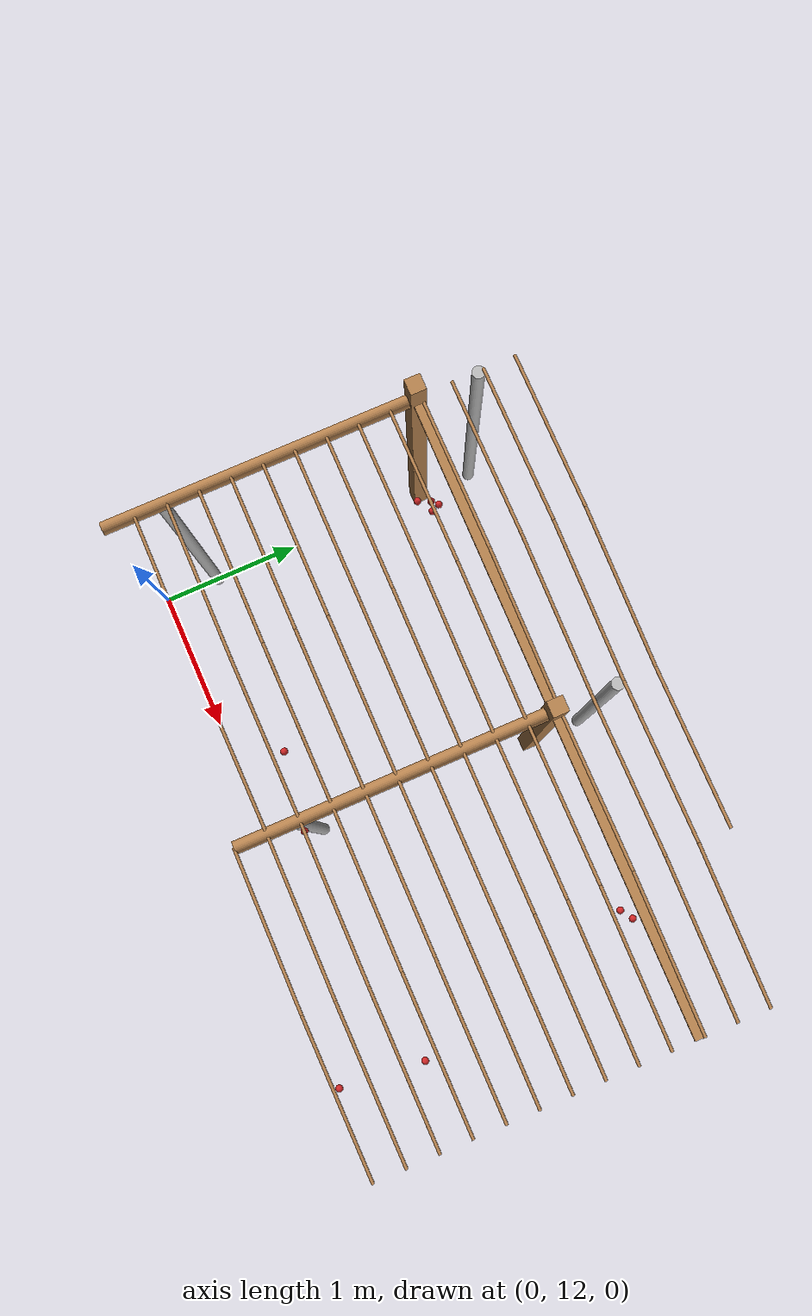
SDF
<sdf version="1.4">
 <model name="pergola">
  <include><name>post_7</name><pose>0.0 14.0 0 0 0 0</pose><uri>model://post</uri></include>
  <include><name>post_18</name><pose>2.0 14.0 0 0 0 0</pose><uri>model://post</uri></include>
  <link name="beam_7">
   <pose>1.0 14.0 1.81 0 0 0</pose>
   <collision name="collision"><geometry><box><size>2.0 0.06 0.02</size></box></geometry></collision>
   <visual name="visual">
    <geometry><box><size>2.0 0.06 0.02</size></box></geometry>
    <material><script><name>Gazebo/Wood</name></script></material>
   </visual>
   <inertial>
    <mass>5</mass>
    <inertia>
     <ixx>0.0016666666666666668</ixx>
     <ixy>0.0</ixy>
     <ixz>0.0</ixz>
     <iyy>1.6681666666666664</iyy>
     <iyz>0.0</iyz>
     <izz>1.6668333333333332</izz>
    </inertia>
   </inertial>
  </link>
  <link name="beam_18">
   <pose>3.0 14.0 1.81 0 0 0</pose>
   <collision name="collision"><geometry><box><size>2.0 0.06 0.02</size></box></geometry></collision>
   <visual name="visual">
    <geometry><box><size>2.0 0.06 0.02</size></box></geometry>
    <material><script><name>Gazebo/Wood</name></script></material>
   </visual>
   <inertial>
    <mass>5</mass>
    <inertia>
     <ixx>0.0016666666666666668</ixx>
     <ixy>0.0</ixy>
     <ixz>0.0</ixz>
     <iyy>1.6681666666666664</iyy>
     <iyz>0.0</iyz>
     <izz>1.6668333333333332</izz>
    </inertia>
   </inertial>
  </link>
  <include><name>tree_6</name><pose>0.0 12.4 0 0 0 0</pose><uri>model://tree_trunk</uri></include>
  <include><name>tree_7</name><pose>0.0 14.4 0 0 0 0</pose><uri>model://tree_trunk</uri></include>
  <include><name>tree_16</name><pose>2.0 12.4 0 0 0 0</pose><uri>model://tree_trunk</uri></include>
  <include><name>tree_17</name><pose>2.0 14.4 0 0 0 0</pose><uri>model://tree_trunk</uri></include>
  <link name="baseBranch_6">
   <pose>0.0 13.0 1.8 1.5707963267948966 0 0</pose>
   <collision name="collision">
    <geometry><cylinder><radius>0.04</radius><length>1.94</length></cylinder></geometry>
   </collision>
   <visual name="visual">
    <geometry><cylinder><radius>0.04</radius><length>1.94</length></cylinder></geometry>
    <material><script><name>Gazebo/WoodFloor</name></script></material>
   </visual>
   <inertial>
    <mass>10</mass>
    <inertia>
     <ixx>3.140333333333333</ixx>
     <ixy>0.0</ixy>
     <ixz>0.0</ixz>
     <iyy>3.140333333333333</iyy>
     <iyz>0.0</iyz>
     <izz>0.008</izz>
    </inertia>
   </inertial>
  </link>
  <link name="baseBranch_16">
   <pose>2.0 13.0 1.8 1.5707963267948966 0 0</pose>
   <collision name="collision">
    <geometry><cylinder><radius>0.04</radius><length>1.94</length></cylinder></geometry>
   </collision>
   <visual name="visual">
    <geometry><cylinder><radius>0.04</radius><length>1.94</length></cylinder></geometry>
    <material><script><name>Gazebo/WoodFloor</name></script></material>
   </visual>
   <inertial>
    <mass>10</mass>
    <inertia>
     <ixx>3.140333333333333</ixx>
     <ixy>0.0</ixy>
     <ixz>0.0</ixz>
     <iyy>3.140333333333333</iyy>
     <iyz>0.0</iyz>
     <izz>0.008</izz>
    </inertia>
   </inertial>
  </link>
  <link name="vine_122">
   <pose>0.5 12.23 1.85 0 1.5208379310729538 0</pose>
   <collision name="collision">
    <geometry><cylinder><radius>0.01</radius><length>1.0012492197250393</length></cylinder></geometry>
   </collision>
   <visual name="visual">
    <geometry><cylinder><radius>0.01</radius><length>1.0012492197250393</length></cylinder></geometry>
    <material><script><name>Gazebo/WoodFloor</name></script></material>
   </visual>
   <inertial>
    <mass>5</mass>
    <inertia>
     <ixx>0.41783333333333345</ixx>
     <ixy>0.0</ixy>
     <ixz>0.0</ixz>
     <iyy>0.41783333333333345</iyy>
     <iyz>0.0</iyz>
     <izz>0.00025</izz>
    </inertia>
   </inertial>
  </link>
  <link name="vine_123">
   <pose>1.5 12.23 1.85 0 -1.5208379310729538 0</pose>
   <collision name="collision">
    <geometry><cylinder><radius>0.01</radius><length>1.0012492197250393</length></cylinder></geometry>
   </collision>
   <visual name="visual">
    <geometry><cylinder><radius>0.01</radius><length>1.0012492197250393</length></cylinder></geometry>
    <material><script><name>Gazebo/WoodFloor</name></script></material>
   </visual>
   <inertial>
    <mass>5</mass>
    <inertia>
     <ixx>0.41783333333333345</ixx>
     <ixy>0.0</ixy>
     <ixz>0.0</ixz>
     <iyy>0.41783333333333345</iyy>
     <iyz>0.0</iyz>
     <izz>0.00025</izz>
    </inertia>
   </inertial>
  </link>
  <link name="vine_124">
   <pose>0.5 12.43 1.85 0 1.5208379310729538 0</pose>
   <collision name="collision">
    <geometry><cylinder><radius>0.01</radius><length>1.0012492197250393</length></cylinder></geometry>
   </collision>
   <visual name="visual">
    <geometry><cylinder><radius>0.01</radius><length>1.0012492197250393</length></cylinder></geometry>
    <material><script><name>Gazebo/WoodFloor</name></script></material>
   </visual>
   <inertial>
    <mass>5</mass>
    <inertia>
     <ixx>0.41783333333333345</ixx>
     <ixy>0.0</ixy>
     <ixz>0.0</ixz>
     <iyy>0.41783333333333345</iyy>
     <iyz>0.0</iyz>
     <izz>0.00025</izz>
    </inertia>
   </inertial>
  </link>
  <link name="vine_125">
   <pose>1.5 12.43 1.85 0 -1.5208379310729538 0</pose>
   <collision name="collision">
    <geometry><cylinder><radius>0.01</radius><length>1.0012492197250393</length></cylinder></geometry>
   </collision>
   <visual name="visual">
    <geometry><cylinder><radius>0.01</radius><length>1.0012492197250393</length></cylinder></geometry>
    <material><script><name>Gazebo/WoodFloor</name></script></material>
   </visual>
   <inertial>
    <mass>5</mass>
    <inertia>
     <ixx>0.41783333333333345</ixx>
     <ixy>0.0</ixy>
     <ixz>0.0</ixz>
     <iyy>0.41783333333333345</iyy>
     <iyz>0.0</iyz>
     <izz>0.00025</izz>
    </inertia>
   </inertial>
  </link>
  <link name="vine_126">
   <pose>0.5 12.63 1.85 0 1.5208379310729538 0</pose>
   <collision name="collision">
    <geometry><cylinder><radius>0.01</radius><length>1.0012492197250393</length></cylinder></geometry>
   </collision>
   <visual name="visual">
    <geometry><cylinder><radius>0.01</radius><length>1.0012492197250393</length></cylinder></geometry>
    <material><script><name>Gazebo/WoodFloor</name></script></material>
   </visual>
   <inertial>
    <mass>5</mass>
    <inertia>
     <ixx>0.41783333333333345</ixx>
     <ixy>0.0</ixy>
     <ixz>0.0</ixz>
     <iyy>0.41783333333333345</iyy>
     <iyz>0.0</iyz>
     <izz>0.00025</izz>
    </inertia>
   </inertial>
  </link>
  <link name="vine_127">
   <pose>1.5 12.63 1.85 0 -1.5208379310729538 0</pose>
   <collision name="collision">
    <geometry><cylinder><radius>0.01</radius><length>1.0012492197250393</length></cylinder></geometry>
   </collision>
   <visual name="visual">
    <geometry><cylinder><radius>0.01</radius><length>1.0012492197250393</length></cylinder></geometry>
    <material><script><name>Gazebo/WoodFloor</name></script></material>
   </visual>
   <inertial>
    <mass>5</mass>
    <inertia>
     <ixx>0.41783333333333345</ixx>
     <ixy>0.0</ixy>
     <ixz>0.0</ixz>
     <iyy>0.41783333333333345</iyy>
     <iyz>0.0</iyz>
     <izz>0.00025</izz>
    </inertia>
   </inertial>
  </link>
  <link name="vine_128">
   <pose>0.5 12.83 1.85 0 1.5208379310729538 0</pose>
   <collision name="collision">
    <geometry><cylinder><radius>0.01</radius><length>1.0012492197250393</length></cylinder></geometry>
   </collision>
   <visual name="visual">
    <geometry><cylinder><radius>0.01</radius><length>1.0012492197250393</length></cylinder></geometry>
    <material><script><name>Gazebo/WoodFloor</name></script></material>
   </visual>
   <inertial>
    <mass>5</mass>
    <inertia>
     <ixx>0.41783333333333345</ixx>
     <ixy>0.0</ixy>
     <ixz>0.0</ixz>
     <iyy>0.41783333333333345</iyy>
     <iyz>0.0</iyz>
     <izz>0.00025</izz>
    </inertia>
   </inertial>
  </link>
  <link name="vine_129">
   <pose>1.5 12.83 1.85 0 -1.5208379310729538 0</pose>
   <collision name="collision">
    <geometry><cylinder><radius>0.01</radius><length>1.0012492197250393</length></cylinder></geometry>
   </collision>
   <visual name="visual">
    <geometry><cylinder><radius>0.01</radius><length>1.0012492197250393</length></cylinder></geometry>
    <material><script><name>Gazebo/WoodFloor</name></script></material>
   </visual>
   <inertial>
    <mass>5</mass>
    <inertia>
     <ixx>0.41783333333333345</ixx>
     <ixy>0.0</ixy>
     <ixz>0.0</ixz>
     <iyy>0.41783333333333345</iyy>
     <iyz>0.0</iyz>
     <izz>0.00025</izz>
    </inertia>
   </inertial>
  </link>
  <link name="vine_130">
   <pose>0.5 13.03 1.85 0 1.5208379310729538 0</pose>
   <collision name="collision">
    <geometry><cylinder><radius>0.01</radius><length>1.0012492197250393</length></cylinder></geometry>
   </collision>
   <visual name="visual">
    <geometry><cylinder><radius>0.01</radius><length>1.0012492197250393</length></cylinder></geometry>
    <material><script><name>Gazebo/WoodFloor</name></script></material>
   </visual>
   <inertial>
    <mass>5</mass>
    <inertia>
     <ixx>0.41783333333333345</ixx>
     <ixy>0.0</ixy>
     <ixz>0.0</ixz>
     <iyy>0.41783333333333345</iyy>
     <iyz>0.0</iyz>
     <izz>0.00025</izz>
    </inertia>
   </inertial>
  </link>
  <link name="vine_131">
   <pose>1.5 13.03 1.85 0 -1.5208379310729538 0</pose>
   <collision name="collision">
    <geometry><cylinder><radius>0.01</radius><length>1.0012492197250393</length></cylinder></geometry>
   </collision>
   <visual name="visual">
    <geometry><cylinder><radius>0.01</radius><length>1.0012492197250393</length></cylinder></geometry>
    <material><script><name>Gazebo/WoodFloor</name></script></material>
   </visual>
   <inertial>
    <mass>5</mass>
    <inertia>
     <ixx>0.41783333333333345</ixx>
     <ixy>0.0</ixy>
     <ixz>0.0</ixz>
     <iyy>0.41783333333333345</iyy>
     <iyz>0.0</iyz>
     <izz>0.00025</izz>
    </inertia>
   </inertial>
  </link>
  <link name="vine_132">
   <pose>0.5 13.23 1.85 0 1.5208379310729538 0</pose>
   <collision name="collision">
    <geometry><cylinder><radius>0.01</radius><length>1.0012492197250393</length></cylinder></geometry>
   </collision>
   <visual name="visual">
    <geometry><cylinder><radius>0.01</radius><length>1.0012492197250393</length></cylinder></geometry>
    <material><script><name>Gazebo/WoodFloor</name></script></material>
   </visual>
   <inertial>
    <mass>5</mass>
    <inertia>
     <ixx>0.41783333333333345</ixx>
     <ixy>0.0</ixy>
     <ixz>0.0</ixz>
     <iyy>0.41783333333333345</iyy>
     <iyz>0.0</iyz>
     <izz>0.00025</izz>
    </inertia>
   </inertial>
  </link>
  <link name="vine_133">
   <pose>1.5 13.23 1.85 0 -1.5208379310729538 0</pose>
   <collision name="collision">
    <geometry><cylinder><radius>0.01</radius><length>1.0012492197250393</length></cylinder></geometry>
   </collision>
   <visual name="visual">
    <geometry><cylinder><radius>0.01</radius><length>1.0012492197250393</length></cylinder></geometry>
    <material><script><name>Gazebo/WoodFloor</name></script></material>
   </visual>
   <inertial>
    <mass>5</mass>
    <inertia>
     <ixx>0.41783333333333345</ixx>
     <ixy>0.0</ixy>
     <ixz>0.0</ixz>
     <iyy>0.41783333333333345</iyy>
     <iyz>0.0</iyz>
     <izz>0.00025</izz>
    </inertia>
   </inertial>
  </link>
  <link name="vine_134">
   <pose>0.5 13.43 1.85 0 1.5208379310729538 0</pose>
   <collision name="collision">
    <geometry><cylinder><radius>0.01</radius><length>1.0012492197250393</length></cylinder></geometry>
   </collision>
   <visual name="visual">
    <geometry><cylinder><radius>0.01</radius><length>1.0012492197250393</length></cylinder></geometry>
    <material><script><name>Gazebo/WoodFloor</name></script></material>
   </visual>
   <inertial>
    <mass>5</mass>
    <inertia>
     <ixx>0.41783333333333345</ixx>
     <ixy>0.0</ixy>
     <ixz>0.0</ixz>
     <iyy>0.41783333333333345</iyy>
     <iyz>0.0</iyz>
     <izz>0.00025</izz>
    </inertia>
   </inertial>
  </link>
  <link name="vine_135">
   <pose>1.5 13.43 1.85 0 -1.5208379310729538 0</pose>
   <collision name="collision">
    <geometry><cylinder><radius>0.01</radius><length>1.0012492197250393</length></cylinder></geometry>
   </collision>
   <visual name="visual">
    <geometry><cylinder><radius>0.01</radius><length>1.0012492197250393</length></cylinder></geometry>
    <material><script><name>Gazebo/WoodFloor</name></script></material>
   </visual>
   <inertial>
    <mass>5</mass>
    <inertia>
     <ixx>0.41783333333333345</ixx>
     <ixy>0.0</ixy>
     <ixz>0.0</ixz>
     <iyy>0.41783333333333345</iyy>
     <iyz>0.0</iyz>
     <izz>0.00025</izz>
    </inertia>
   </inertial>
  </link>
  <link name="vine_136">
   <pose>0.5 13.63 1.85 0 1.5208379310729538 0</pose>
   <collision name="collision">
    <geometry><cylinder><radius>0.01</radius><length>1.0012492197250393</length></cylinder></geometry>
   </collision>
   <visual name="visual">
    <geometry><cylinder><radius>0.01</radius><length>1.0012492197250393</length></cylinder></geometry>
    <material><script><name>Gazebo/WoodFloor</name></script></material>
   </visual>
   <inertial>
    <mass>5</mass>
    <inertia>
     <ixx>0.41783333333333345</ixx>
     <ixy>0.0</ixy>
     <ixz>0.0</ixz>
     <iyy>0.41783333333333345</iyy>
     <iyz>0.0</iyz>
     <izz>0.00025</izz>
    </inertia>
   </inertial>
  </link>
  <link name="vine_137">
   <pose>1.5 13.63 1.85 0 -1.5208379310729538 0</pose>
   <collision name="collision">
    <geometry><cylinder><radius>0.01</radius><length>1.0012492197250393</length></cylinder></geometry>
   </collision>
   <visual name="visual">
    <geometry><cylinder><radius>0.01</radius><length>1.0012492197250393</length></cylinder></geometry>
    <material><script><name>Gazebo/WoodFloor</name></script></material>
   </visual>
   <inertial>
    <mass>5</mass>
    <inertia>
     <ixx>0.41783333333333345</ixx>
     <ixy>0.0</ixy>
     <ixz>0.0</ixz>
     <iyy>0.41783333333333345</iyy>
     <iyz>0.0</iyz>
     <izz>0.00025</izz>
    </inertia>
   </inertial>
  </link>
  <link name="vine_138">
   <pose>0.5 13.83 1.85 0 1.5208379310729538 0</pose>
   <collision name="collision">
    <geometry><cylinder><radius>0.01</radius><length>1.0012492197250393</length></cylinder></geometry>
   </collision>
   <visual name="visual">
    <geometry><cylinder><radius>0.01</radius><length>1.0012492197250393</length></cylinder></geometry>
    <material><script><name>Gazebo/WoodFloor</name></script></material>
   </visual>
   <inertial>
    <mass>5</mass>
    <inertia>
     <ixx>0.41783333333333345</ixx>
     <ixy>0.0</ixy>
     <ixz>0.0</ixz>
     <iyy>0.41783333333333345</iyy>
     <iyz>0.0</iyz>
     <izz>0.00025</izz>
    </inertia>
   </inertial>
  </link>
  <link name="vine_139">
   <pose>1.5 13.83 1.85 0 -1.5208379310729538 0</pose>
   <collision name="collision">
    <geometry><cylinder><radius>0.01</radius><length>1.0012492197250393</length></cylinder></geometry>
   </collision>
   <visual name="visual">
    <geometry><cylinder><radius>0.01</radius><length>1.0012492197250393</length></cylinder></geometry>
    <material><script><name>Gazebo/WoodFloor</name></script></material>
   </visual>
   <inertial>
    <mass>5</mass>
    <inertia>
     <ixx>0.41783333333333345</ixx>
     <ixy>0.0</ixy>
     <ixz>0.0</ixz>
     <iyy>0.41783333333333345</iyy>
     <iyz>0.0</iyz>
     <izz>0.00025</izz>
    </inertia>
   </inertial>
  </link>
  <link name="vine_140">
   <pose>0.5 14.03 1.85 0 1.5208379310729538 0</pose>
   <collision name="collision">
    <geometry><cylinder><radius>0.01</radius><length>1.0012492197250393</length></cylinder></geometry>
   </collision>
   <visual name="visual">
    <geometry><cylinder><radius>0.01</radius><length>1.0012492197250393</length></cylinder></geometry>
    <material><script><name>Gazebo/WoodFloor</name></script></material>
   </visual>
   <inertial>
    <mass>5</mass>
    <inertia>
     <ixx>0.41783333333333345</ixx>
     <ixy>0.0</ixy>
     <ixz>0.0</ixz>
     <iyy>0.41783333333333345</iyy>
     <iyz>0.0</iyz>
     <izz>0.00025</izz>
    </inertia>
   </inertial>
  </link>
  <link name="vine_141">
   <pose>1.5 14.03 1.85 0 -1.5208379310729538 0</pose>
   <collision name="collision">
    <geometry><cylinder><radius>0.01</radius><length>1.0012492197250393</length></cylinder></geometry>
   </collision>
   <visual name="visual">
    <geometry><cylinder><radius>0.01</radius><length>1.0012492197250393</length></cylinder></geometry>
    <material><script><name>Gazebo/WoodFloor</name></script></material>
   </visual>
   <inertial>
    <mass>5</mass>
    <inertia>
     <ixx>0.41783333333333345</ixx>
     <ixy>0.0</ixy>
     <ixz>0.0</ixz>
     <iyy>0.41783333333333345</iyy>
     <iyz>0.0</iyz>
     <izz>0.00025</izz>
    </inertia>
   </inertial>
  </link>
  <link name="vine_142">
   <pose>0.5 14.23 1.85 0 1.5208379310729538 0</pose>
   <collision name="collision">
    <geometry><cylinder><radius>0.01</radius><length>1.0012492197250393</length></cylinder></geometry>
   </collision>
   <visual name="visual">
    <geometry><cylinder><radius>0.01</radius><length>1.0012492197250393</length></cylinder></geometry>
    <material><script><name>Gazebo/WoodFloor</name></script></material>
   </visual>
   <inertial>
    <mass>5</mass>
    <inertia>
     <ixx>0.41783333333333345</ixx>
     <ixy>0.0</ixy>
     <ixz>0.0</ixz>
     <iyy>0.41783333333333345</iyy>
     <iyz>0.0</iyz>
     <izz>0.00025</izz>
    </inertia>
   </inertial>
  </link>
  <link name="vine_143">
   <pose>1.5 14.23 1.85 0 -1.5208379310729538 0</pose>
   <collision name="collision">
    <geometry><cylinder><radius>0.01</radius><length>1.0012492197250393</length></cylinder></geometry>
   </collision>
   <visual name="visual">
    <geometry><cylinder><radius>0.01</radius><length>1.0012492197250393</length></cylinder></geometry>
    <material><script><name>Gazebo/WoodFloor</name></script></material>
   </visual>
   <inertial>
    <mass>5</mass>
    <inertia>
     <ixx>0.41783333333333345</ixx>
     <ixy>0.0</ixy>
     <ixz>0.0</ixz>
     <iyy>0.41783333333333345</iyy>
     <iyz>0.0</iyz>
     <izz>0.00025</izz>
    </inertia>
   </inertial>
  </link>
  <link name="vine_144">
   <pose>0.5 14.43 1.85 0 1.5208379310729538 0</pose>
   <collision name="collision">
    <geometry><cylinder><radius>0.01</radius><length>1.0012492197250393</length></cylinder></geometry>
   </collision>
   <visual name="visual">
    <geometry><cylinder><radius>0.01</radius><length>1.0012492197250393</length></cylinder></geometry>
    <material><script><name>Gazebo/WoodFloor</name></script></material>
   </visual>
   <inertial>
    <mass>5</mass>
    <inertia>
     <ixx>0.41783333333333345</ixx>
     <ixy>0.0</ixy>
     <ixz>0.0</ixz>
     <iyy>0.41783333333333345</iyy>
     <iyz>0.0</iyz>
     <izz>0.00025</izz>
    </inertia>
   </inertial>
  </link>
  <link name="vine_145">
   <pose>1.5 14.43 1.85 0 -1.5208379310729538 0</pose>
   <collision name="collision">
    <geometry><cylinder><radius>0.01</radius><length>1.0012492197250393</length></cylinder></geometry>
   </collision>
   <visual name="visual">
    <geometry><cylinder><radius>0.01</radius><length>1.0012492197250393</length></cylinder></geometry>
    <material><script><name>Gazebo/WoodFloor</name></script></material>
   </visual>
   <inertial>
    <mass>5</mass>
    <inertia>
     <ixx>0.41783333333333345</ixx>
     <ixy>0.0</ixy>
     <ixz>0.0</ixz>
     <iyy>0.41783333333333345</iyy>
     <iyz>0.0</iyz>
     <izz>0.00025</izz>
    </inertia>
   </inertial>
  </link>
  <link name="vine_146">
   <pose>0.5 14.63 1.85 0 1.5208379310729538 0</pose>
   <collision name="collision">
    <geometry><cylinder><radius>0.01</radius><length>1.0012492197250393</length></cylinder></geometry>
   </collision>
   <visual name="visual">
    <geometry><cylinder><radius>0.01</radius><length>1.0012492197250393</length></cylinder></geometry>
    <material><script><name>Gazebo/WoodFloor</name></script></material>
   </visual>
   <inertial>
    <mass>5</mass>
    <inertia>
     <ixx>0.41783333333333345</ixx>
     <ixy>0.0</ixy>
     <ixz>0.0</ixz>
     <iyy>0.41783333333333345</iyy>
     <iyz>0.0</iyz>
     <izz>0.00025</izz>
    </inertia>
   </inertial>
  </link>
  <link name="vine_147">
   <pose>1.5 14.63 1.85 0 -1.5208379310729538 0</pose>
   <collision name="collision">
    <geometry><cylinder><radius>0.01</radius><length>1.0012492197250393</length></cylinder></geometry>
   </collision>
   <visual name="visual">
    <geometry><cylinder><radius>0.01</radius><length>1.0012492197250393</length></cylinder></geometry>
    <material><script><name>Gazebo/WoodFloor</name></script></material>
   </visual>
   <inertial>
    <mass>5</mass>
    <inertia>
     <ixx>0.41783333333333345</ixx>
     <ixy>0.0</ixy>
     <ixz>0.0</ixz>
     <iyy>0.41783333333333345</iyy>
     <iyz>0.0</iyz>
     <izz>0.00025</izz>
    </inertia>
   </inertial>
  </link>
  <link name="vine_320">
   <pose>2.5 12.03 1.85 0 1.5208379310729538 0</pose>
   <collision name="collision">
    <geometry><cylinder><radius>0.01</radius><length>1.0012492197250393</length></cylinder></geometry>
   </collision>
   <visual name="visual">
    <geometry><cylinder><radius>0.01</radius><length>1.0012492197250393</length></cylinder></geometry>
    <material><script><name>Gazebo/WoodFloor</name></script></material>
   </visual>
   <inertial>
    <mass>5</mass>
    <inertia>
     <ixx>0.41783333333333345</ixx>
     <ixy>0.0</ixy>
     <ixz>0.0</ixz>
     <iyy>0.41783333333333345</iyy>
     <iyz>0.0</iyz>
     <izz>0.00025</izz>
    </inertia>
   </inertial>
  </link>
  <link name="vine_321">
   <pose>3.5 12.03 1.85 0 -1.5208379310729538 0</pose>
   <collision name="collision">
    <geometry><cylinder><radius>0.01</radius><length>1.0012492197250393</length></cylinder></geometry>
   </collision>
   <visual name="visual">
    <geometry><cylinder><radius>0.01</radius><length>1.0012492197250393</length></cylinder></geometry>
    <material><script><name>Gazebo/WoodFloor</name></script></material>
   </visual>
   <inertial>
    <mass>5</mass>
    <inertia>
     <ixx>0.41783333333333345</ixx>
     <ixy>0.0</ixy>
     <ixz>0.0</ixz>
     <iyy>0.41783333333333345</iyy>
     <iyz>0.0</iyz>
     <izz>0.00025</izz>
    </inertia>
   </inertial>
  </link>
  <link name="vine_322">
   <pose>2.5 12.23 1.85 0 1.5208379310729538 0</pose>
   <collision name="collision">
    <geometry><cylinder><radius>0.01</radius><length>1.0012492197250393</length></cylinder></geometry>
   </collision>
   <visual name="visual">
    <geometry><cylinder><radius>0.01</radius><length>1.0012492197250393</length></cylinder></geometry>
    <material><script><name>Gazebo/WoodFloor</name></script></material>
   </visual>
   <inertial>
    <mass>5</mass>
    <inertia>
     <ixx>0.41783333333333345</ixx>
     <ixy>0.0</ixy>
     <ixz>0.0</ixz>
     <iyy>0.41783333333333345</iyy>
     <iyz>0.0</iyz>
     <izz>0.00025</izz>
    </inertia>
   </inertial>
  </link>
  <link name="vine_323">
   <pose>3.5 12.23 1.85 0 -1.5208379310729538 0</pose>
   <collision name="collision">
    <geometry><cylinder><radius>0.01</radius><length>1.0012492197250393</length></cylinder></geometry>
   </collision>
   <visual name="visual">
    <geometry><cylinder><radius>0.01</radius><length>1.0012492197250393</length></cylinder></geometry>
    <material><script><name>Gazebo/WoodFloor</name></script></material>
   </visual>
   <inertial>
    <mass>5</mass>
    <inertia>
     <ixx>0.41783333333333345</ixx>
     <ixy>0.0</ixy>
     <ixz>0.0</ixz>
     <iyy>0.41783333333333345</iyy>
     <iyz>0.0</iyz>
     <izz>0.00025</izz>
    </inertia>
   </inertial>
  </link>
  <link name="vine_324">
   <pose>2.5 12.43 1.85 0 1.5208379310729538 0</pose>
   <collision name="collision">
    <geometry><cylinder><radius>0.01</radius><length>1.0012492197250393</length></cylinder></geometry>
   </collision>
   <visual name="visual">
    <geometry><cylinder><radius>0.01</radius><length>1.0012492197250393</length></cylinder></geometry>
    <material><script><name>Gazebo/WoodFloor</name></script></material>
   </visual>
   <inertial>
    <mass>5</mass>
    <inertia>
     <ixx>0.41783333333333345</ixx>
     <ixy>0.0</ixy>
     <ixz>0.0</ixz>
     <iyy>0.41783333333333345</iyy>
     <iyz>0.0</iyz>
     <izz>0.00025</izz>
    </inertia>
   </inertial>
  </link>
  <link name="vine_325">
   <pose>3.5 12.43 1.85 0 -1.5208379310729538 0</pose>
   <collision name="collision">
    <geometry><cylinder><radius>0.01</radius><length>1.0012492197250393</length></cylinder></geometry>
   </collision>
   <visual name="visual">
    <geometry><cylinder><radius>0.01</radius><length>1.0012492197250393</length></cylinder></geometry>
    <material><script><name>Gazebo/WoodFloor</name></script></material>
   </visual>
   <inertial>
    <mass>5</mass>
    <inertia>
     <ixx>0.41783333333333345</ixx>
     <ixy>0.0</ixy>
     <ixz>0.0</ixz>
     <iyy>0.41783333333333345</iyy>
     <iyz>0.0</iyz>
     <izz>0.00025</izz>
    </inertia>
   </inertial>
  </link>
  <link name="vine_326">
   <pose>2.5 12.63 1.85 0 1.5208379310729538 0</pose>
   <collision name="collision">
    <geometry><cylinder><radius>0.01</radius><length>1.0012492197250393</length></cylinder></geometry>
   </collision>
   <visual name="visual">
    <geometry><cylinder><radius>0.01</radius><length>1.0012492197250393</length></cylinder></geometry>
    <material><script><name>Gazebo/WoodFloor</name></script></material>
   </visual>
   <inertial>
    <mass>5</mass>
    <inertia>
     <ixx>0.41783333333333345</ixx>
     <ixy>0.0</ixy>
     <ixz>0.0</ixz>
     <iyy>0.41783333333333345</iyy>
     <iyz>0.0</iyz>
     <izz>0.00025</izz>
    </inertia>
   </inertial>
  </link>
  <link name="vine_327">
   <pose>3.5 12.63 1.85 0 -1.5208379310729538 0</pose>
   <collision name="collision">
    <geometry><cylinder><radius>0.01</radius><length>1.0012492197250393</length></cylinder></geometry>
   </collision>
   <visual name="visual">
    <geometry><cylinder><radius>0.01</radius><length>1.0012492197250393</length></cylinder></geometry>
    <material><script><name>Gazebo/WoodFloor</name></script></material>
   </visual>
   <inertial>
    <mass>5</mass>
    <inertia>
     <ixx>0.41783333333333345</ixx>
     <ixy>0.0</ixy>
     <ixz>0.0</ixz>
     <iyy>0.41783333333333345</iyy>
     <iyz>0.0</iyz>
     <izz>0.00025</izz>
    </inertia>
   </inertial>
  </link>
  <link name="vine_328">
   <pose>2.5 12.83 1.85 0 1.5208379310729538 0</pose>
   <collision name="collision">
    <geometry><cylinder><radius>0.01</radius><length>1.0012492197250393</length></cylinder></geometry>
   </collision>
   <visual name="visual">
    <geometry><cylinder><radius>0.01</radius><length>1.0012492197250393</length></cylinder></geometry>
    <material><script><name>Gazebo/WoodFloor</name></script></material>
   </visual>
   <inertial>
    <mass>5</mass>
    <inertia>
     <ixx>0.41783333333333345</ixx>
     <ixy>0.0</ixy>
     <ixz>0.0</ixz>
     <iyy>0.41783333333333345</iyy>
     <iyz>0.0</iyz>
     <izz>0.00025</izz>
    </inertia>
   </inertial>
  </link>
  <link name="vine_329">
   <pose>3.5 12.83 1.85 0 -1.5208379310729538 0</pose>
   <collision name="collision">
    <geometry><cylinder><radius>0.01</radius><length>1.0012492197250393</length></cylinder></geometry>
   </collision>
   <visual name="visual">
    <geometry><cylinder><radius>0.01</radius><length>1.0012492197250393</length></cylinder></geometry>
    <material><script><name>Gazebo/WoodFloor</name></script></material>
   </visual>
   <inertial>
    <mass>5</mass>
    <inertia>
     <ixx>0.41783333333333345</ixx>
     <ixy>0.0</ixy>
     <ixz>0.0</ixz>
     <iyy>0.41783333333333345</iyy>
     <iyz>0.0</iyz>
     <izz>0.00025</izz>
    </inertia>
   </inertial>
  </link>
  <link name="vine_330">
   <pose>2.5 13.03 1.85 0 1.5208379310729538 0</pose>
   <collision name="collision">
    <geometry><cylinder><radius>0.01</radius><length>1.0012492197250393</length></cylinder></geometry>
   </collision>
   <visual name="visual">
    <geometry><cylinder><radius>0.01</radius><length>1.0012492197250393</length></cylinder></geometry>
    <material><script><name>Gazebo/WoodFloor</name></script></material>
   </visual>
   <inertial>
    <mass>5</mass>
    <inertia>
     <ixx>0.41783333333333345</ixx>
     <ixy>0.0</ixy>
     <ixz>0.0</ixz>
     <iyy>0.41783333333333345</iyy>
     <iyz>0.0</iyz>
     <izz>0.00025</izz>
    </inertia>
   </inertial>
  </link>
  <link name="vine_331">
   <pose>3.5 13.03 1.85 0 -1.5208379310729538 0</pose>
   <collision name="collision">
    <geometry><cylinder><radius>0.01</radius><length>1.0012492197250393</length></cylinder></geometry>
   </collision>
   <visual name="visual">
    <geometry><cylinder><radius>0.01</radius><length>1.0012492197250393</length></cylinder></geometry>
    <material><script><name>Gazebo/WoodFloor</name></script></material>
   </visual>
   <inertial>
    <mass>5</mass>
    <inertia>
     <ixx>0.41783333333333345</ixx>
     <ixy>0.0</ixy>
     <ixz>0.0</ixz>
     <iyy>0.41783333333333345</iyy>
     <iyz>0.0</iyz>
     <izz>0.00025</izz>
    </inertia>
   </inertial>
  </link>
  <link name="vine_332">
   <pose>2.5 13.23 1.85 0 1.5208379310729538 0</pose>
   <collision name="collision">
    <geometry><cylinder><radius>0.01</radius><length>1.0012492197250393</length></cylinder></geometry>
   </collision>
   <visual name="visual">
    <geometry><cylinder><radius>0.01</radius><length>1.0012492197250393</length></cylinder></geometry>
    <material><script><name>Gazebo/WoodFloor</name></script></material>
   </visual>
   <inertial>
    <mass>5</mass>
    <inertia>
     <ixx>0.41783333333333345</ixx>
     <ixy>0.0</ixy>
     <ixz>0.0</ixz>
     <iyy>0.41783333333333345</iyy>
     <iyz>0.0</iyz>
     <izz>0.00025</izz>
    </inertia>
   </inertial>
  </link>
  <link name="vine_333">
   <pose>3.5 13.23 1.85 0 -1.5208379310729538 0</pose>
   <collision name="collision">
    <geometry><cylinder><radius>0.01</radius><length>1.0012492197250393</length></cylinder></geometry>
   </collision>
   <visual name="visual">
    <geometry><cylinder><radius>0.01</radius><length>1.0012492197250393</length></cylinder></geometry>
    <material><script><name>Gazebo/WoodFloor</name></script></material>
   </visual>
   <inertial>
    <mass>5</mass>
    <inertia>
     <ixx>0.41783333333333345</ixx>
     <ixy>0.0</ixy>
     <ixz>0.0</ixz>
     <iyy>0.41783333333333345</iyy>
     <iyz>0.0</iyz>
     <izz>0.00025</izz>
    </inertia>
   </inertial>
  </link>
  <link name="vine_334">
   <pose>2.5 13.43 1.85 0 1.5208379310729538 0</pose>
   <collision name="collision">
    <geometry><cylinder><radius>0.01</radius><length>1.0012492197250393</length></cylinder></geometry>
   </collision>
   <visual name="visual">
    <geometry><cylinder><radius>0.01</radius><length>1.0012492197250393</length></cylinder></geometry>
    <material><script><name>Gazebo/WoodFloor</name></script></material>
   </visual>
   <inertial>
    <mass>5</mass>
    <inertia>
     <ixx>0.41783333333333345</ixx>
     <ixy>0.0</ixy>
     <ixz>0.0</ixz>
     <iyy>0.41783333333333345</iyy>
     <iyz>0.0</iyz>
     <izz>0.00025</izz>
    </inertia>
   </inertial>
  </link>
  <link name="vine_335">
   <pose>3.5 13.43 1.85 0 -1.5208379310729538 0</pose>
   <collision name="collision">
    <geometry><cylinder><radius>0.01</radius><length>1.0012492197250393</length></cylinder></geometry>
   </collision>
   <visual name="visual">
    <geometry><cylinder><radius>0.01</radius><length>1.0012492197250393</length></cylinder></geometry>
    <material><script><name>Gazebo/WoodFloor</name></script></material>
   </visual>
   <inertial>
    <mass>5</mass>
    <inertia>
     <ixx>0.41783333333333345</ixx>
     <ixy>0.0</ixy>
     <ixz>0.0</ixz>
     <iyy>0.41783333333333345</iyy>
     <iyz>0.0</iyz>
     <izz>0.00025</izz>
    </inertia>
   </inertial>
  </link>
  <link name="vine_336">
   <pose>2.5 13.63 1.85 0 1.5208379310729538 0</pose>
   <collision name="collision">
    <geometry><cylinder><radius>0.01</radius><length>1.0012492197250393</length></cylinder></geometry>
   </collision>
   <visual name="visual">
    <geometry><cylinder><radius>0.01</radius><length>1.0012492197250393</length></cylinder></geometry>
    <material><script><name>Gazebo/WoodFloor</name></script></material>
   </visual>
   <inertial>
    <mass>5</mass>
    <inertia>
     <ixx>0.41783333333333345</ixx>
     <ixy>0.0</ixy>
     <ixz>0.0</ixz>
     <iyy>0.41783333333333345</iyy>
     <iyz>0.0</iyz>
     <izz>0.00025</izz>
    </inertia>
   </inertial>
  </link>
  <link name="vine_337">
   <pose>3.5 13.63 1.85 0 -1.5208379310729538 0</pose>
   <collision name="collision">
    <geometry><cylinder><radius>0.01</radius><length>1.0012492197250393</length></cylinder></geometry>
   </collision>
   <visual name="visual">
    <geometry><cylinder><radius>0.01</radius><length>1.0012492197250393</length></cylinder></geometry>
    <material><script><name>Gazebo/WoodFloor</name></script></material>
   </visual>
   <inertial>
    <mass>5</mass>
    <inertia>
     <ixx>0.41783333333333345</ixx>
     <ixy>0.0</ixy>
     <ixz>0.0</ixz>
     <iyy>0.41783333333333345</iyy>
     <iyz>0.0</iyz>
     <izz>0.00025</izz>
    </inertia>
   </inertial>
  </link>
  <link name="vine_338">
   <pose>2.5 13.83 1.85 0 1.5208379310729538 0</pose>
   <collision name="collision">
    <geometry><cylinder><radius>0.01</radius><length>1.0012492197250393</length></cylinder></geometry>
   </collision>
   <visual name="visual">
    <geometry><cylinder><radius>0.01</radius><length>1.0012492197250393</length></cylinder></geometry>
    <material><script><name>Gazebo/WoodFloor</name></script></material>
   </visual>
   <inertial>
    <mass>5</mass>
    <inertia>
     <ixx>0.41783333333333345</ixx>
     <ixy>0.0</ixy>
     <ixz>0.0</ixz>
     <iyy>0.41783333333333345</iyy>
     <iyz>0.0</iyz>
     <izz>0.00025</izz>
    </inertia>
   </inertial>
  </link>
  <link name="vine_339">
   <pose>3.5 13.83 1.85 0 -1.5208379310729538 0</pose>
   <collision name="collision">
    <geometry><cylinder><radius>0.01</radius><length>1.0012492197250393</length></cylinder></geometry>
   </collision>
   <visual name="visual">
    <geometry><cylinder><radius>0.01</radius><length>1.0012492197250393</length></cylinder></geometry>
    <material><script><name>Gazebo/WoodFloor</name></script></material>
   </visual>
   <inertial>
    <mass>5</mass>
    <inertia>
     <ixx>0.41783333333333345</ixx>
     <ixy>0.0</ixy>
     <ixz>0.0</ixz>
     <iyy>0.41783333333333345</iyy>
     <iyz>0.0</iyz>
     <izz>0.00025</izz>
    </inertia>
   </inertial>
  </link>
  <link name="vine_340">
   <pose>2.5 14.03 1.85 0 1.5208379310729538 0</pose>
   <collision name="collision">
    <geometry><cylinder><radius>0.01</radius><length>1.0012492197250393</length></cylinder></geometry>
   </collision>
   <visual name="visual">
    <geometry><cylinder><radius>0.01</radius><length>1.0012492197250393</length></cylinder></geometry>
    <material><script><name>Gazebo/WoodFloor</name></script></material>
   </visual>
   <inertial>
    <mass>5</mass>
    <inertia>
     <ixx>0.41783333333333345</ixx>
     <ixy>0.0</ixy>
     <ixz>0.0</ixz>
     <iyy>0.41783333333333345</iyy>
     <iyz>0.0</iyz>
     <izz>0.00025</izz>
    </inertia>
   </inertial>
  </link>
  <link name="vine_341">
   <pose>3.5 14.03 1.85 0 -1.5208379310729538 0</pose>
   <collision name="collision">
    <geometry><cylinder><radius>0.01</radius><length>1.0012492197250393</length></cylinder></geometry>
   </collision>
   <visual name="visual">
    <geometry><cylinder><radius>0.01</radius><length>1.0012492197250393</length></cylinder></geometry>
    <material><script><name>Gazebo/WoodFloor</name></script></material>
   </visual>
   <inertial>
    <mass>5</mass>
    <inertia>
     <ixx>0.41783333333333345</ixx>
     <ixy>0.0</ixy>
     <ixz>0.0</ixz>
     <iyy>0.41783333333333345</iyy>
     <iyz>0.0</iyz>
     <izz>0.00025</izz>
    </inertia>
   </inertial>
  </link>
  <link name="vine_342">
   <pose>2.5 14.23 1.85 0 1.5208379310729538 0</pose>
   <collision name="collision">
    <geometry><cylinder><radius>0.01</radius><length>1.0012492197250393</length></cylinder></geometry>
   </collision>
   <visual name="visual">
    <geometry><cylinder><radius>0.01</radius><length>1.0012492197250393</length></cylinder></geometry>
    <material><script><name>Gazebo/WoodFloor</name></script></material>
   </visual>
   <inertial>
    <mass>5</mass>
    <inertia>
     <ixx>0.41783333333333345</ixx>
     <ixy>0.0</ixy>
     <ixz>0.0</ixz>
     <iyy>0.41783333333333345</iyy>
     <iyz>0.0</iyz>
     <izz>0.00025</izz>
    </inertia>
   </inertial>
  </link>
  <link name="vine_343">
   <pose>3.5 14.23 1.85 0 -1.5208379310729538 0</pose>
   <collision name="collision">
    <geometry><cylinder><radius>0.01</radius><length>1.0012492197250393</length></cylinder></geometry>
   </collision>
   <visual name="visual">
    <geometry><cylinder><radius>0.01</radius><length>1.0012492197250393</length></cylinder></geometry>
    <material><script><name>Gazebo/WoodFloor</name></script></material>
   </visual>
   <inertial>
    <mass>5</mass>
    <inertia>
     <ixx>0.41783333333333345</ixx>
     <ixy>0.0</ixy>
     <ixz>0.0</ixz>
     <iyy>0.41783333333333345</iyy>
     <iyz>0.0</iyz>
     <izz>0.00025</izz>
    </inertia>
   </inertial>
  </link>
  <link name="vine_344">
   <pose>2.5 14.43 1.85 0 1.5208379310729538 0</pose>
   <collision name="collision">
    <geometry><cylinder><radius>0.01</radius><length>1.0012492197250393</length></cylinder></geometry>
   </collision>
   <visual name="visual">
    <geometry><cylinder><radius>0.01</radius><length>1.0012492197250393</length></cylinder></geometry>
    <material><script><name>Gazebo/WoodFloor</name></script></material>
   </visual>
   <inertial>
    <mass>5</mass>
    <inertia>
     <ixx>0.41783333333333345</ixx>
     <ixy>0.0</ixy>
     <ixz>0.0</ixz>
     <iyy>0.41783333333333345</iyy>
     <iyz>0.0</iyz>
     <izz>0.00025</izz>
    </inertia>
   </inertial>
  </link>
  <link name="vine_345">
   <pose>3.5 14.43 1.85 0 -1.5208379310729538 0</pose>
   <collision name="collision">
    <geometry><cylinder><radius>0.01</radius><length>1.0012492197250393</length></cylinder></geometry>
   </collision>
   <visual name="visual">
    <geometry><cylinder><radius>0.01</radius><length>1.0012492197250393</length></cylinder></geometry>
    <material><script><name>Gazebo/WoodFloor</name></script></material>
   </visual>
   <inertial>
    <mass>5</mass>
    <inertia>
     <ixx>0.41783333333333345</ixx>
     <ixy>0.0</ixy>
     <ixz>0.0</ixz>
     <iyy>0.41783333333333345</iyy>
     <iyz>0.0</iyz>
     <izz>0.00025</izz>
    </inertia>
   </inertial>
  </link>
  <link name="vine_346">
   <pose>2.5 14.63 1.85 0 1.5208379310729538 0</pose>
   <collision name="collision">
    <geometry><cylinder><radius>0.01</radius><length>1.0012492197250393</length></cylinder></geometry>
   </collision>
   <visual name="visual">
    <geometry><cylinder><radius>0.01</radius><length>1.0012492197250393</length></cylinder></geometry>
    <material><script><name>Gazebo/WoodFloor</name></script></material>
   </visual>
   <inertial>
    <mass>5</mass>
    <inertia>
     <ixx>0.41783333333333345</ixx>
     <ixy>0.0</ixy>
     <ixz>0.0</ixz>
     <iyy>0.41783333333333345</iyy>
     <iyz>0.0</iyz>
     <izz>0.00025</izz>
    </inertia>
   </inertial>
  </link>
  <link name="fruit_92">
   <pose>2.0586342688501253 12.413452324816305 1.6179000646860173 0 0 0</pose>
   <collision name="fruit_collision_92"><geometry><sphere><radius>0.022</radius></sphere></geometry></collision>
   <visual name="visual">
    <geometry><sphere><radius>0.022</radius></sphere></geometry>
    <material><script><name>Gazebo/Red</name></script></material>
   </visual>
   <inertial>
    <mass>0.05</mass>
    <inertia>
     <ixx>9.679999999999999e-06</ixx>
     <ixy>0.0</ixy>
     <ixz>0.0</ixz>
     <iyy>9.679999999999999e-06</iyy>
     <iyz>0.0</iyz>
     <izz>9.679999999999999e-06</izz>
    </inertia>
   </inertial>
   <sensor name="fruit_contact_92" type="contact">
    <contact><collision>fruit_collision_92</collision></contact>
   </sensor>
  </link>
  <link name="fruit_108">
   <pose>0.5223760991065098 13.787203203483154 1.6402447252057508 0 0 0</pose>
   <collision name="fruit_collision_108"><geometry><sphere><radius>0.022</radius></sphere></geometry></collision>
   <visual name="visual">
    <geometry><sphere><radius>0.022</radius></sphere></geometry>
    <material><script><name>Gazebo/Red</name></script></material>
   </visual>
   <inertial>
    <mass>0.05</mass>
    <inertia>
     <ixx>9.679999999999999e-06</ixx>
     <ixy>0.0</ixy>
     <ixz>0.0</ixz>
     <iyy>9.679999999999999e-06</iyy>
     <iyz>0.0</iyz>
     <izz>9.679999999999999e-06</izz>
    </inertia>
   </inertial>
   <sensor name="fruit_contact_108" type="contact">
    <contact><collision>fruit_collision_108</collision></contact>
   </sensor>
  </link>
  <link name="fruit_181">
   <pose>1.6019633954109729 12.49551377740422 1.7645434756533789 0 0 0</pose>
   <collision name="fruit_collision_181"><geometry><sphere><radius>0.022</radius></sphere></geometry></collision>
   <visual name="visual">
    <geometry><sphere><radius>0.022</radius></sphere></geometry>
    <material><script><name>Gazebo/Red</name></script></material>
   </visual>
   <inertial>
    <mass>0.05</mass>
    <inertia>
     <ixx>9.679999999999999e-06</ixx>
     <ixy>0.0</ixy>
     <ixz>0.0</ixz>
     <iyy>9.679999999999999e-06</iyy>
     <iyz>0.0</iyz>
     <izz>9.679999999999999e-06</izz>
    </inertia>
   </inertial>
   <sensor name="fruit_contact_181" type="contact">
    <contact><collision>fruit_collision_181</collision></contact>
   </sensor>
  </link>
  <link name="fruit_258">
   <pose>3.20424284906535 13.916294040062887 1.5729199318209603 0 0 0</pose>
   <collision name="fruit_collision_258"><geometry><sphere><radius>0.022</radius></sphere></geometry></collision>
   <visual name="visual">
    <geometry><sphere><radius>0.022</radius></sphere></geometry>
    <material><script><name>Gazebo/Red</name></script></material>
   </visual>
   <inertial>
    <mass>0.05</mass>
    <inertia>
     <ixx>9.679999999999999e-06</ixx>
     <ixy>0.0</ixy>
     <ixz>0.0</ixz>
     <iyy>9.679999999999999e-06</iyy>
     <iyz>0.0</iyz>
     <izz>9.679999999999999e-06</izz>
    </inertia>
   </inertial>
   <sensor name="fruit_contact_258" type="contact">
    <contact><collision>fruit_collision_258</collision></contact>
   </sensor>
  </link>
  <link name="fruit_272">
   <pose>3.521684174454943 12.546126967664941 1.7088210316971797 0 0 0</pose>
   <collision name="fruit_collision_272"><geometry><sphere><radius>0.022</radius></sphere></geometry></collision>
   <visual name="visual">
    <geometry><sphere><radius>0.022</radius></sphere></geometry>
    <material><script><name>Gazebo/Red</name></script></material>
   </visual>
   <inertial>
    <mass>0.05</mass>
    <inertia>
     <ixx>9.679999999999999e-06</ixx>
     <ixy>0.0</ixy>
     <ixz>0.0</ixz>
     <iyy>9.679999999999999e-06</iyy>
     <iyz>0.0</iyz>
     <izz>9.679999999999999e-06</izz>
    </inertia>
   </inertial>
   <sensor name="fruit_contact_272" type="contact">
    <contact><collision>fruit_collision_272</collision></contact>
   </sensor>
  </link>
  <link name="fruit_358">
   <pose>3.4795771308929395 12.034538926938492 1.6554248061074712 0 0 0</pose>
   <collision name="fruit_collision_358"><geometry><sphere><radius>0.022</radius></sphere></geometry></collision>
   <visual name="visual">
    <geometry><sphere><radius>0.022</radius></sphere></geometry>
    <material><script><name>Gazebo/Red</name></script></material>
   </visual>
   <inertial>
    <mass>0.05</mass>
    <inertia>
     <ixx>9.679999999999999e-06</ixx>
     <ixy>0.0</ixy>
     <ixz>0.0</ixz>
     <iyy>9.679999999999999e-06</iyy>
     <iyz>0.0</iyz>
     <izz>9.679999999999999e-06</izz>
    </inertia>
   </inertial>
   <sensor name="fruit_contact_358" type="contact">
    <contact><collision>fruit_collision_358</collision></contact>
   </sensor>
  </link>
  <link name="fruit_443">
   <pose>0.6101632704150124 13.844825190465356 1.6359163883456544 0 0 0</pose>
   <collision name="fruit_collision_443"><geometry><sphere><radius>0.022</radius></sphere></geometry></collision>
   <visual name="visual">
    <geometry><sphere><radius>0.022</radius></sphere></geometry>
    <material><script><name>Gazebo/Red</name></script></material>
   </visual>
   <inertial>
    <mass>0.05</mass>
    <inertia>
     <ixx>9.679999999999999e-06</ixx>
     <ixy>0.0</ixy>
     <ixz>0.0</ixz>
     <iyy>9.679999999999999e-06</iyy>
     <iyz>0.0</iyz>
     <izz>9.679999999999999e-06</izz>
    </inertia>
   </inertial>
   <sensor name="fruit_contact_443" type="contact">
    <contact><collision>fruit_collision_443</collision></contact>
   </sensor>
  </link>
  <link name="fruit_456">
   <pose>0.5875302108002272 13.895559877479474 1.631393030092314 0 0 0</pose>
   <collision name="fruit_collision_456"><geometry><sphere><radius>0.022</radius></sphere></geometry></collision>
   <visual name="visual">
    <geometry><sphere><radius>0.022</radius></sphere></geometry>
    <material><script><name>Gazebo/Red</name></script></material>
   </visual>
   <inertial>
    <mass>0.05</mass>
    <inertia>
     <ixx>9.679999999999999e-06</ixx>
     <ixy>0.0</ixy>
     <ixz>0.0</ixz>
     <iyy>9.679999999999999e-06</iyy>
     <iyz>0.0</iyz>
     <izz>9.679999999999999e-06</izz>
    </inertia>
   </inertial>
   <sensor name="fruit_contact_456" type="contact">
    <contact><collision>fruit_collision_456</collision></contact>
   </sensor>
  </link>
  <link name="fruit_654">
   <pose>3.275833802656708 13.96287930290737 1.5728759685050602 0 0 0</pose>
   <collision name="fruit_collision_654"><geometry><sphere><radius>0.022</radius></sphere></geometry></collision>
   <visual name="visual">
    <geometry><sphere><radius>0.022</radius></sphere></geometry>
    <material><script><name>Gazebo/Red</name></script></material>
   </visual>
   <inertial>
    <mass>0.05</mass>
    <inertia>
     <ixx>9.679999999999999e-06</ixx>
     <ixy>0.0</ixy>
     <ixz>0.0</ixz>
     <iyy>9.679999999999999e-06</iyy>
     <iyz>0.0</iyz>
     <izz>9.679999999999999e-06</izz>
    </inertia>
   </inertial>
   <sensor name="fruit_contact_654" type="contact">
    <contact><collision>fruit_collision_654</collision></contact>
   </sensor>
  </link>
  <link name="fruit_862">
   <pose>0.5484876067569551 13.862398393086263 1.6190518940619387 0 0 0</pose>
   <collision name="fruit_collision_862"><geometry><sphere><radius>0.022</radius></sphere></geometry></collision>
   <visual name="visual">
    <geometry><sphere><radius>0.022</radius></sphere></geometry>
    <material><script><name>Gazebo/Red</name></script></material>
   </visual>
   <inertial>
    <mass>0.05</mass>
    <inertia>
     <ixx>9.679999999999999e-06</ixx>
     <ixy>0.0</ixy>
     <ixz>0.0</ixz>
     <iyy>9.679999999999999e-06</iyy>
     <iyz>0.0</iyz>
     <izz>9.679999999999999e-06</izz>
    </inertia>
   </inertial>
   <sensor name="fruit_contact_862" type="contact">
    <contact><collision>fruit_collision_862</collision></contact>
   </sensor>
  </link>
 </model>
</sdf>
